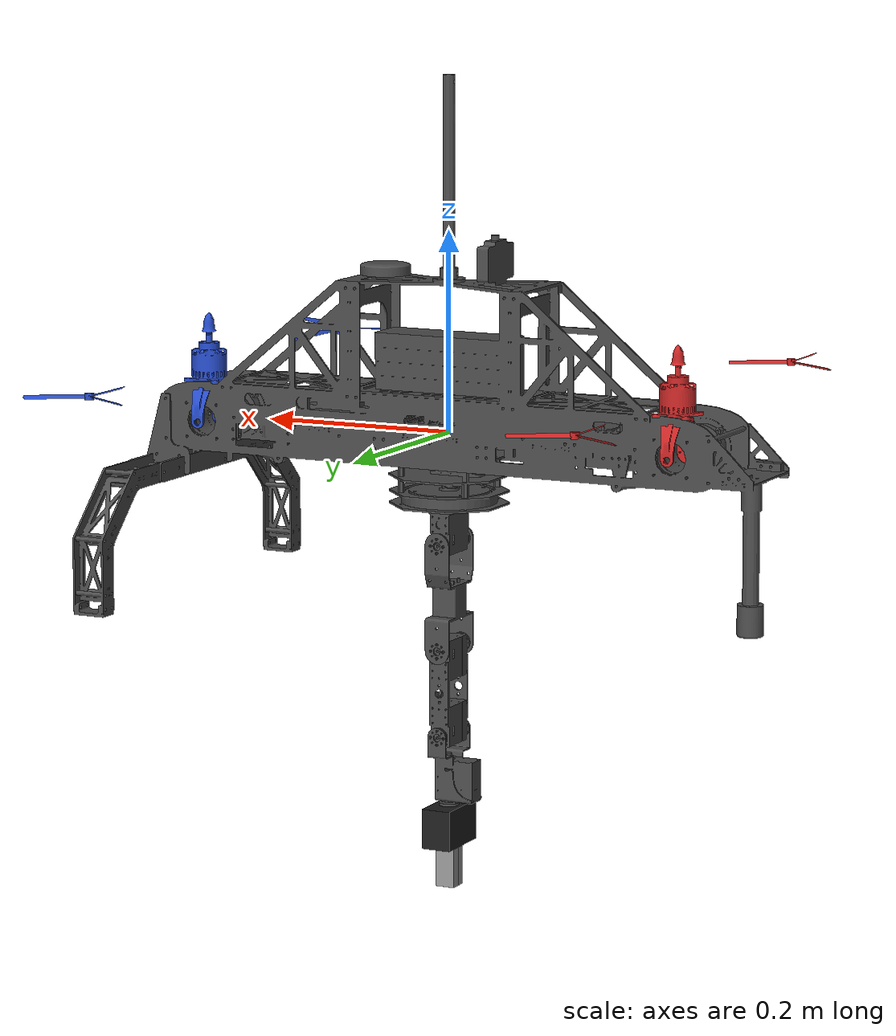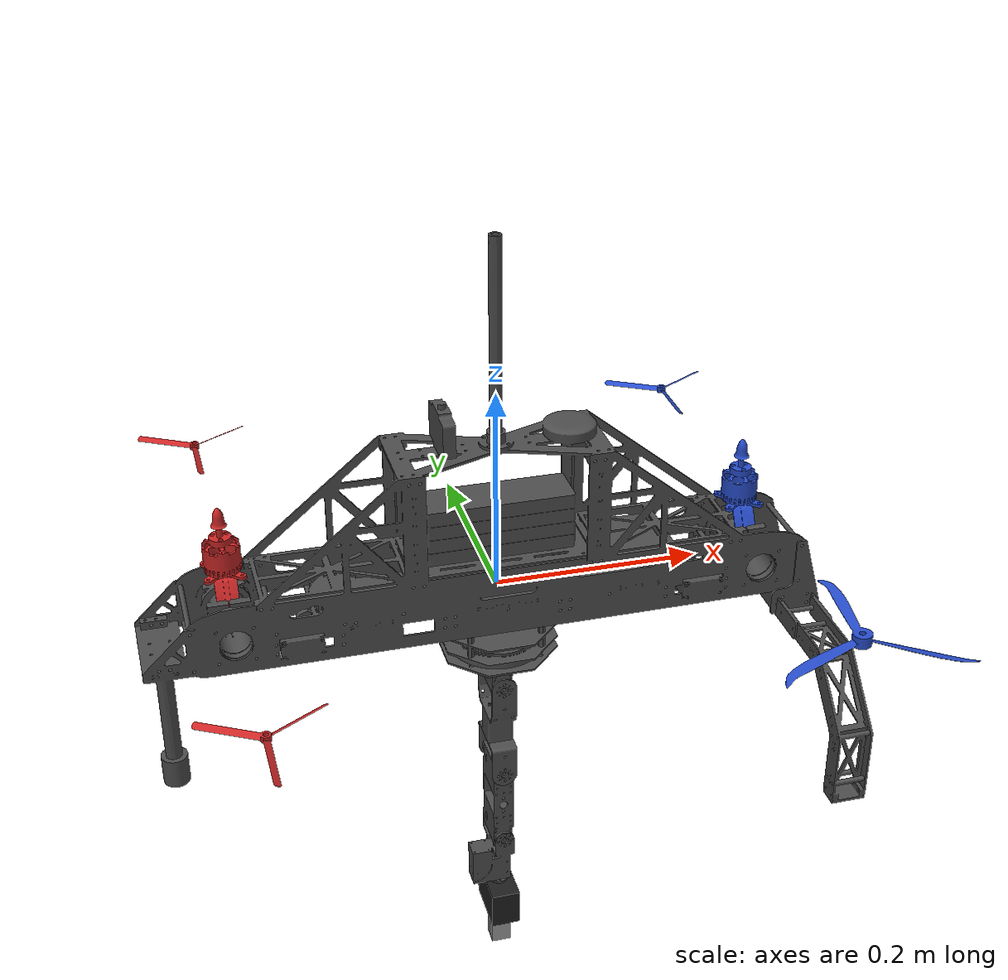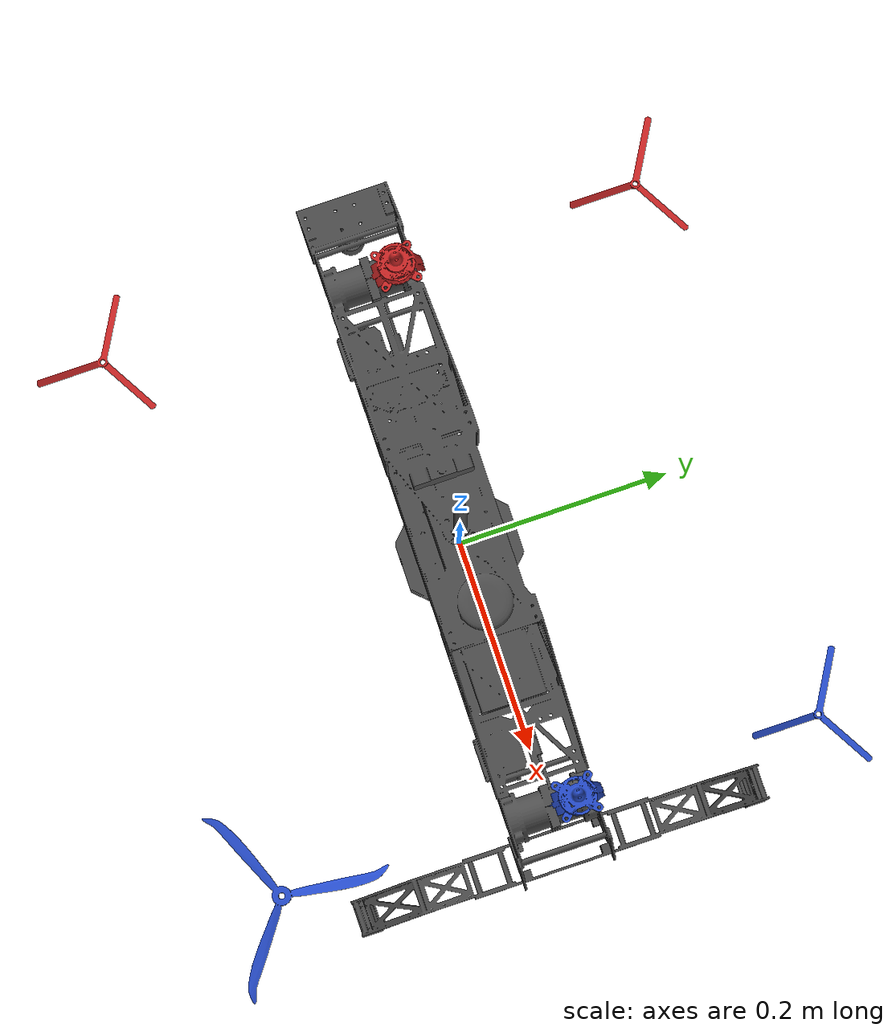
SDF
<sdf version='1.7'>
  <model name='quadtilt_new'>
    <link name='base_link'>
      <inertial>
        <pose>0.0 -0.000647 0.024368 0 -0 0</pose>
        <mass>2.3411</mass>
        <inertia>
          <ixx>0.0013622</ixx>
          <ixy>1.2109e-05</ixy>
          <ixz>2.1278e-05</ixz>
          <iyy>0.011253</iyy>
          <iyz>1.003e-06</iyz>
          <izz>0.011215</izz>
        </inertia>
      </inertial>

      <collision name='landing_gear_front_collision'>
      <pose>-0.3 0 -0.18 0 0 0</pose> <!-- ⚠️ 请替换为你前起落架脚尖的实际坐标 -->
      <geometry>
        <sphere><radius>0.03</radius></sphere>
      </geometry>
      <surface>
        <contact>
          <ode>
            <!-- [关键1] 降低刚度 kp。原本1e6太硬像钢铁，现在1e5(十万)像硬橡胶 -->
            <kp>1000000</kp>
            <!-- [关键2] 极大提高阻尼 kd。以前是100，现在2000。吸收一切高频震动动能 -->
            <kd>10</kd>
            <!-- [关键3] 给一个极小但非0的允许修正速度，防止挤压应力把 EKF 炸掉 -->
            <max_vel>0.2</max_vel>
            <!-- [关键4] 允许 5 毫米的弹性形变陷落深度，作为物理缓冲层 -->
            <min_depth>0.001</min_depth>
          </ode>
        </contact>
        <friction><ode><mu>1.0</mu><mu2>1.0</mu2></ode></friction>
      </surface>
    </collision>

    <!-- 左起落架脚垫 -->
    <collision name='landing_gear_left_collision'>
      <pose>0.3 0.2 -0.18 0 0 0</pose> <!-- ⚠️ 请替换为实际坐标 -->
      <geometry>
        <sphere><radius>0.03</radius></sphere>
      </geometry>
      <surface>
        <contact>
          <ode>
            <!-- [关键1] 降低刚度 kp。原本1e6太硬像钢铁，现在1e5(十万)像硬橡胶 -->
            <kp>1000000</kp>
            <!-- [关键2] 极大提高阻尼 kd。以前是100，现在2000。吸收一切高频震动动能 -->
            <kd>10</kd>
            <!-- [关键3] 给一个极小但非0的允许修正速度，防止挤压应力把 EKF 炸掉 -->
            <max_vel>0.2</max_vel>
            <!-- [关键4] 允许 5 毫米的弹性形变陷落深度，作为物理缓冲层 -->
            <min_depth>0.001</min_depth>
          </ode>
        </contact>
        <friction><ode><mu>1.0</mu><mu2>1.0</mu2></ode></friction>
      </surface>
    </collision>

    <!-- 右起落架脚垫 -->
    <collision name='landing_gear_right_collision'>
      <pose>0.3 -0.2 -0.18 0 0 0</pose> <!-- ⚠️ 请替换为实际坐标 -->
      <geometry>
        <sphere><radius>0.03</radius></sphere>
      </geometry>
      <surface>
        <contact>
          <ode>
            <!-- [关键1] 降低刚度 kp。原本1e6太硬像钢铁，现在1e5(十万)像硬橡胶 -->
            <kp>1000000</kp>
            <!-- [关键2] 极大提高阻尼 kd。以前是100，现在2000。吸收一切高频震动动能 -->
            <kd>10</kd>
            <!-- [关键3] 给一个极小但非0的允许修正速度，防止挤压应力把 EKF 炸掉 -->
            <max_vel>0.2</max_vel>
            <!-- [关键4] 允许 5 毫米的弹性形变陷落深度，作为物理缓冲层 -->
            <min_depth>0.001</min_depth>
          </ode>
        </contact>
        <friction><ode><mu>1.0</mu><mu2>1.0</mu2></ode></friction>
      </surface>
    </collision>

      <visual name='base_link_visual'>
        <pose>0 0 0 0 -0 0</pose>
        <geometry>
          <mesh>
            <scale>1 1 1</scale>
            <uri>model://quadtilt_new/meshes/base_link.STL</uri>
          </mesh>
        </geometry>
        <material>
          <script>
            <name>Gazebo/DarkGrey</name>
            <uri>file://media/materials/scripts/gazebo.material</uri>
          </script>
        </material>
      </visual>
    </link>

    <!-- IMU Link -->
    <link name='imu_link'>
      <pose>0 0 0 0 0 0</pose>
      <inertial>
        <pose>0 0 0 0 0 0</pose>
        <mass>0.015</mass>
        <inertia>
          <ixx>0.00001</ixx><ixy>0</ixy><ixz>0</ixz>
          <iyy>0.00002</iyy><iyz>0</iyz><izz>0.00002</izz>
        </inertia>
      </inertial>
      <sensor name="imu_sensor" type="imu">
        <pose>0 0 0 3.141593 0 0</pose>
        <always_on>1</always_on>
        <update_rate>1000.0</update_rate>
      </sensor>
    </link>
    <joint name='imu_joint' type='fixed'>
      <child>imu_link</child>
      <parent>base_link</parent>
    </joint>

    <joint name='tilt_0_joint' type='revolute'>
      <pose relative_to='base_link'>0.255 0 0 -1.5708 -1.5708 -3.14159</pose>
      <parent>base_link</parent>
      <child>tilt_0_Link</child>
      <axis>
        <xyz>0 0 1</xyz>
        <limit>
          <lower>-1.57</lower>
          <upper>1.57</upper>
          <effort>10</effort>
          <velocity>2</velocity>
        </limit>
        <dynamics>
          <spring_reference>0</spring_reference>
          <spring_stiffness>0</spring_stiffness>
        </dynamics>
      </axis>
    </joint>
    <link name='tilt_0_Link'>
      <pose relative_to='tilt_0_joint'>0 0 0 0 -0 0</pose>
      <inertial>
        <pose>0.028311 -0 -0 0 -0 0</pose>
        <mass>0.94736</mass>
        <inertia>
          <ixx>0.0033591</ixx>
          <ixy>-3.2015e-12</ixy>
          <ixz>5.825e-11</ixz>
          <iyy>0.0032937</iyy>
          <iyz>6.3798e-10</iyz>
          <izz>0.0001883</izz>
        </inertia>
      </inertial>
      <collision name='tilt_0_Link_collision'>
        <pose>0 0 0 0 -0 0</pose>
        <geometry>
          <mesh>
            <scale>1 1 1</scale>
            <uri>model://quadtilt_new/meshes/tilt_0_Link.STL</uri>
          </mesh>
        </geometry>
      </collision>
      <visual name='tilt_0_Link_visual'>
        <pose>0 0 0 0 -0 0</pose>
        <geometry>
          <mesh>
            <scale>1 1 1</scale>
            <uri>model://quadtilt_new/meshes/tilt_0_Link.STL</uri>
          </mesh>
        </geometry>
        <material><script><name>Gazebo/Blue</name></script></material>
      </visual>
    </link>
    <joint name='properller_0_joint' type='revolute'>
      <pose relative_to='tilt_0_Link'>0.05075 0 0.255 -1.5708 -0 -1.5708</pose>
      <parent>tilt_0_Link</parent>
      <child>properller_0_Link</child>
      <axis>
        <xyz>0 0 1</xyz>
        <limit>
          <lower>-1e+16</lower>
          <upper>1e+16</upper>
        </limit>
        <dynamics>
          <damping>0.002</damping>
          <friction>0.005</friction>
          <spring_reference>0</spring_reference>
          <spring_stiffness>0</spring_stiffness>
        </dynamics>
      </axis>
    </joint>
    <link name='properller_0_Link'>
      <pose relative_to='properller_0_joint'>0 0 0 0 -0 0</pose>
      <inertial>
        <pose>0 0 0.005 0 -0 0</pose>
        <mass>0.025</mass>
        <inertia>
          <ixx>0.00005</ixx>
          <ixy>0</ixy>
          <ixz>0</ixz>
          <iyy>0.00005</iyy>
          <iyz>0</iyz>
          <izz>0.0003</izz>  <!-- 匹配 15 寸桨的转动惯量 -->
        </inertia>
      </inertial>
      <visual name='properller_0_Link_visual'>
        <pose>0 0 0 0 -0 0</pose>
        <geometry>
          <mesh>
            <scale>1 1 1</scale>
            <uri>model://quadtilt_new/meshes/properller_0_Link.STL</uri>
          </mesh>
        </geometry>
        <material><script><name>Gazebo/Blue</name></script></material>
      </visual>
    </link>
    <joint name='properller_2_joint' type='revolute'>
      <pose relative_to='tilt_0_Link'>0.05075 0 -0.255 -1.5708 -0 -1.5708</pose>
      <parent>tilt_0_Link</parent>
      <child>properller_2_Link</child>
      <axis>
        <xyz>0 0 1</xyz>
        <limit>
          <lower>-1e+16</lower>
          <upper>1e+16</upper>
        </limit>
        <dynamics>
          <damping>0.002</damping>
          <friction>0.005</friction>
          <spring_reference>0</spring_reference>
          <spring_stiffness>0</spring_stiffness>
        </dynamics>
      </axis>
    </joint>
    <link name='properller_2_Link'>
      <pose relative_to='properller_2_joint'>0 0 0 0 -0 0</pose>
      <inertial>
        <pose>-0 -0 0.005 0 -0 0</pose>
        <mass>0.025</mass>
        <inertia>
          <ixx>0.00005</ixx>
          <ixy>0</ixy>
          <ixz>0</ixz>
          <iyy>0.00005</iyy>
          <iyz>0</iyz>
          <izz>0.0003</izz>  <!-- 匹配 15 寸桨的转动惯量 -->
        </inertia>
      </inertial>
      <visual name='properller_2_Link_visual'>
        <pose>0 0 0 0 -0 0</pose>
        <geometry>
          <mesh>
            <scale>1 1 1</scale>
            <uri>model://quadtilt_new/meshes/properller_2_Link.STL</uri>
          </mesh>
        </geometry>
        <material><script><name>Gazebo/Blue</name></script></material>
      </visual>
    </link>
    <joint name='tilt_1_joint' type='revolute'>
      <pose relative_to='base_link'>-0.255 0 0 -1.5708 -1.5708 -3.14159</pose>
      <parent>base_link</parent>
      <child>tilt_1_Link</child>
      <axis>
        <xyz>0 0 1</xyz>
        <limit>
          <lower>-1.57</lower>
          <upper>1.57</upper>
          <effort>10</effort>
          <velocity>2</velocity>
        </limit>
        <dynamics>
          <spring_reference>0</spring_reference>
          <spring_stiffness>0</spring_stiffness>
        </dynamics>
      </axis>
    </joint>
    <link name='tilt_1_Link'>
      <pose relative_to='tilt_1_joint'>0 0 0 0 -0 0</pose>
      <inertial>
        <pose>0.028311 -0 -0 0 -0 0</pose>
        <mass>0.94736</mass>
        <inertia>
          <ixx>0.0033591</ixx>
          <ixy>-3.2015e-12</ixy>
          <ixz>5.825e-11</ixz>
          <iyy>0.0032937</iyy>
          <iyz>6.3798e-10</iyz>
          <izz>0.0001883</izz>
        </inertia>
      </inertial>
      <collision name='tilt_1_Link_collision'>
        <pose>0 0 0 0 -0 0</pose>
        <geometry>
          <mesh>
            <scale>1 1 1</scale>
            <uri>model://quadtilt_new/meshes/tilt_1_Link.STL</uri>
          </mesh>
        </geometry>
      </collision>
      <visual name='tilt_1_Link_visual'>
        <pose>0 0 0 0 -0 0</pose>
        <geometry>
          <mesh>
            <scale>1 1 1</scale>
            <uri>model://quadtilt_new/meshes/tilt_1_Link.STL</uri>
          </mesh>
        </geometry>
        <material><script><name>Gazebo/Red</name></script></material>
      </visual>
    </link>
    <joint name='properller_1_joint' type='revolute'>
      <pose relative_to='tilt_1_Link'>0.05075 0 -0.255 -1.5708 -0 -1.5708</pose>
      <parent>tilt_1_Link</parent>
      <child>properller_1_Link</child>
      <axis>
        <xyz>0 0 1</xyz>
        <limit>
          <lower>-1e+16</lower>
          <upper>1e+16</upper>
        </limit>
        <dynamics>
          <damping>0.002</damping>
          <friction>0.005</friction>
          <spring_reference>0</spring_reference>
          <spring_stiffness>0</spring_stiffness>
        </dynamics>
      </axis>
    </joint>
    <link name='properller_1_Link'>
      <pose relative_to='properller_1_joint'>0 0 0 0 -0 0</pose>
      <inertial>
        <pose>-0 -0 0.005 0 -0 0</pose>
        <mass>0.025</mass>
        <inertia>
          <ixx>0.00005</ixx>
          <ixy>0</ixy>
          <ixz>0</ixz>
          <iyy>0.00005</iyy>
          <iyz>0</iyz>
          <izz>0.0003</izz>  <!-- 匹配 15 寸桨的转动惯量 -->
        </inertia>
      </inertial>
      <visual name='properller_1_Link_visual'>
        <pose>0 0 0 0 -0 0</pose>
        <geometry>
          <mesh>
            <scale>1 1 1</scale>
            <uri>model://quadtilt_new/meshes/properller_1_Link.STL</uri>
          </mesh>
        </geometry>
        <material><script><name>Gazebo/Red</name></script></material>
      </visual>
    </link>
    <joint name='properller_3_joint' type='revolute'>
      <pose relative_to='tilt_1_Link'>0.05075 0 0.255 -1.5708 -0 -1.5708</pose>
      <parent>tilt_1_Link</parent>
      <child>properller_3_Link</child>
      <axis>
        <xyz>0 0 1</xyz>
        <limit>
          <lower>-1e+16</lower>
          <upper>1e+16</upper>
        </limit>
        <dynamics>
          <spring_reference>0</spring_reference>
          <spring_stiffness>0</spring_stiffness>
        </dynamics>
      </axis>
    </joint>
    <link name='properller_3_Link'>
      <pose relative_to='properller_3_joint'>0 0 0 0 -0 0</pose>
      <inertial>
        <pose>0 0 0.005 0 -0 0</pose>
        <mass>0.025</mass>
        <inertia>
          <ixx>0.00005</ixx>
          <ixy>0</ixy>
          <ixz>0</ixz>
          <iyy>0.00005</iyy>
          <iyz>0</iyz>
          <izz>0.0003</izz>  <!-- 匹配 15 寸桨的转动惯量 -->
        </inertia>
      </inertial>
      <visual name='properller_3_Link_visual'>
        <pose>0 0 0 0 -0 0</pose>
        <geometry>
          <mesh>
            <scale>1 1 1</scale>
            <uri>model://quadtilt_new/meshes/properller_3_Link.STL</uri>
          </mesh>
        </geometry>
        <material><script><name>Gazebo/Red</name></script></material>
      </visual>
    </link>

    <!-- 插件区域 (气动 + 飞控)                                      -->

    <!-- Aero Prop 0 (CCW) -->
    <plugin name="rotor_0_blade_1" filename="libLiftDragPlugin.so"><a0>0.3</a0><alpha_stall>1.4</alpha_stall><cla>4.25</cla><cda>0.10</cda><cma>0.0</cma><cla_stall>-0.025</cla_stall><cda_stall>0.0</cda_stall><cma_stall>0.0</cma_stall><area>0.0045</area><air_density>1.2041</air_density><cp>0.13 0 0</cp><forward>0 1 0</forward><upward>0 0 1</upward><link_name>properller_0_Link</link_name></plugin>
    <plugin name="rotor_0_blade_2" filename="libLiftDragPlugin.so"><a0>0.3</a0><alpha_stall>1.4</alpha_stall><cla>4.25</cla><cda>0.10</cda><cma>0.0</cma><cla_stall>-0.025</cla_stall><cda_stall>0.0</cda_stall><cma_stall>0.0</cma_stall><area>0.0045</area><air_density>1.2041</air_density><cp>-0.13 0 0</cp><forward>0 -1 0</forward><upward>0 0 1</upward><link_name>properller_0_Link</link_name></plugin>

    <!-- Aero Prop 1 (CCW) -->
    <plugin name="rotor_1_blade_1" filename="libLiftDragPlugin.so"><a0>0.3</a0><alpha_stall>1.4</alpha_stall><cla>4.25</cla><cda>0.10</cda><cma>0.0</cma><cla_stall>-0.025</cla_stall><cda_stall>0.0</cda_stall><cma_stall>0.0</cma_stall><area>0.0045</area><air_density>1.2041</air_density><cp>0.13 0 0</cp><forward>0 1 0</forward><upward>0 0 1</upward><link_name>properller_1_Link</link_name></plugin>
    <plugin name="rotor_1_blade_2" filename="libLiftDragPlugin.so"><a0>0.3</a0><alpha_stall>1.4</alpha_stall><cla>4.25</cla><cda>0.10</cda><cma>0.0</cma><cla_stall>-0.025</cla_stall><cda_stall>0.0</cda_stall><cma_stall>0.0</cma_stall><area>0.0045</area><air_density>1.2041</air_density><cp>-0.13 0 0</cp><forward>0 -1 0</forward><upward>0 0 1</upward><link_name>properller_1_Link</link_name></plugin>

    <!-- Aero Prop 2 (CW) -->
    <plugin name="rotor_2_blade_1" filename="libLiftDragPlugin.so"><a0>0.3</a0><alpha_stall>1.4</alpha_stall><cla>4.25</cla><cda>0.10</cda><cma>0.0</cma><cla_stall>-0.025</cla_stall><cda_stall>0.0</cda_stall><cma_stall>0.0</cma_stall><area>0.0045</area><air_density>1.2041</air_density><cp>0.13 0 0</cp><forward>0 -1 0</forward><upward>0 0 1</upward><link_name>properller_2_Link</link_name></plugin>
    <plugin name="rotor_2_blade_2" filename="libLiftDragPlugin.so"><a0>0.3</a0><alpha_stall>1.4</alpha_stall><cla>4.25</cla><cda>0.10</cda><cma>0.0</cma><cla_stall>-0.025</cla_stall><cda_stall>0.0</cda_stall><cma_stall>0.0</cma_stall><area>0.0045</area><air_density>1.2041</air_density><cp>-0.13 0 0</cp><forward>0 1 0</forward><upward>0 0 1</upward><link_name>properller_2_Link</link_name></plugin>

    <!-- Aero Prop 3 (CW) -->
    <plugin name="rotor_3_blade_1" filename="libLiftDragPlugin.so"><a0>0.3</a0><alpha_stall>1.4</alpha_stall><cla>4.25</cla><cda>0.10</cda><cma>0.0</cma><cla_stall>-0.025</cla_stall><cda_stall>0.0</cda_stall><cma_stall>0.0</cma_stall><area>0.0045</area><air_density>1.2041</air_density><cp>0.13 0 0</cp><forward>0 -1 0</forward><upward>0 0 1</upward><link_name>properller_3_Link</link_name></plugin>
    <plugin name="rotor_3_blade_2" filename="libLiftDragPlugin.so"><a0>0.3</a0><alpha_stall>1.4</alpha_stall><cla>4.25</cla><cda>0.10</cda><cma>0.0</cma><cla_stall>-0.025</cla_stall><cda_stall>0.0</cda_stall><cma_stall>0.0</cma_stall><area>0.0045</area><air_density>1.2041</air_density><cp>-0.13 0 0</cp><forward>0 1 0</forward><upward>0 0 1</upward><link_name>properller_3_Link</link_name></plugin>

    <!-- ArduPilot Control -->
    <plugin name="ardupilot_plugin" filename="libArduPilotPlugin.so">
      <fdm_addr>127.0.0.1</fdm_addr>
      <fdm_port_in>9002</fdm_port_in>
      <fdm_port_out>9003</fdm_port_out>
      <modelXYZToAirplaneXForwardZDown>0 0 0 3.141593 0 0</modelXYZToAirplaneXForwardZDown>
      <imuName>quadtilt_new::imu_link::imu_sensor</imuName>
      <connectionTimeoutMaxCount>5</connectionTimeoutMaxCount>

      <!-- Motors (0-3) -->
      <control channel="0"><type>VELOCITY</type><offset>0</offset><p_gain>0.20</p_gain><i_gain>0</i_gain><d_gain>0</d_gain><i_max>0</i_max><i_min>0</i_min><cmd_max>2.5</cmd_max><cmd_min>-2.5</cmd_min><jointName>properller_0_joint</jointName><multiplier>800</multiplier></control>
      <control channel="1"><type>VELOCITY</type><offset>0</offset><p_gain>0.20</p_gain><i_gain>0</i_gain><d_gain>0</d_gain><i_max>0</i_max><i_min>0</i_min><cmd_max>2.5</cmd_max><cmd_min>-2.5</cmd_min><jointName>properller_1_joint</jointName><multiplier>800</multiplier></control>
      <control channel="2"><type>VELOCITY</type><offset>0</offset><p_gain>0.20</p_gain><i_gain>0</i_gain><d_gain>0</d_gain><i_max>0</i_max><i_min>0</i_min><cmd_max>2.5</cmd_max><cmd_min>-2.5</cmd_min><jointName>properller_2_joint</jointName><multiplier>-800</multiplier></control>
      <control channel="3"><type>VELOCITY</type><offset>0</offset><p_gain>0.20</p_gain><i_gain>0</i_gain><d_gain>0</d_gain><i_max>0</i_max><i_min>0</i_min><cmd_max>2.5</cmd_max><cmd_min>-2.5</cmd_min><jointName>properller_3_joint</jointName><multiplier>-800</multiplier></control>

      <!-- Tilt Servos (4-7)  -->
      <!-- deg_out_red = multiplier*(input(pwm to 0-1)+offset) -->
      <control channel="4"><type>POSITION</type><offset>-0.85</offset><p_gain>40.0</p_gain><i_gain>0</i_gain><d_gain>0.5</d_gain><i_max>0</i_max><i_min>0</i_min><cmd_max>2.0</cmd_max><cmd_min>-2.0</cmd_min><jointName>tilt_0_joint</jointName><multiplier>1.495</multiplier></control>
      <control channel="5"><type>POSITION</type><offset>-0.85</offset><p_gain>40.0</p_gain><i_gain>0</i_gain><d_gain>0.5</d_gain><i_max>0</i_max><i_min>0</i_min><cmd_max>2.0</cmd_max><cmd_min>-2.0</cmd_min><jointName>tilt_1_joint</jointName><multiplier>1.495</multiplier></control>
      <control channel="6">
        <type>POSITION</type>
        <offset>-0.5</offset>
        <p_gain>20.0</p_gain>
        <i_gain>0</i_gain>
        <d_gain>0</d_gain>
        <i_max>0</i_max>
        <i_min>0</i_min>
        <cmd_max>2.0</cmd_max>
        <cmd_min>-2.0</cmd_min>
        <jointName>robotic_arm::joint_1</jointName>
        <multiplier>4.7124</multiplier>
      </control>
      <control channel="7">
        <type>POSITION</type>
        <offset>-0.5</offset>
        <p_gain>20.0</p_gain>
        <i_gain>0</i_gain>
        <d_gain>0.05</d_gain>
        <i_max>0</i_max>
        <i_min>0</i_min>
        <cmd_max>2.0</cmd_max>
        <cmd_min>-2.0</cmd_min>
        <jointName>robotic_arm::joint_2</jointName>
        <multiplier>4.7124</multiplier>
      </control>
      <control channel="8">
        <type>POSITION</type>
        <offset>-0.5</offset>
        <p_gain>20.0</p_gain>
        <i_gain>0</i_gain>
        <d_gain>0.05</d_gain>
        <i_max>0</i_max>
        <i_min>0</i_min>
        <cmd_max>2.0</cmd_max>
        <cmd_min>-2.0</cmd_min>
        <jointName>robotic_arm::joint_3</jointName>
        <multiplier>4.7124</multiplier>
      </control>
      <control channel="9">
        <type>POSITION</type>
        <offset>-0.5</offset>
        <p_gain>20.0</p_gain>
        <i_gain>0</i_gain>
        <d_gain>0.05</d_gain>
        <i_max>0</i_max>
        <i_min>0</i_min>
        <cmd_max>2.0</cmd_max>
        <cmd_min>-2.0</cmd_min>
        <jointName>robotic_arm::joint_4</jointName>
        <multiplier>4.7124</multiplier>
      </control>
      <control channel="10">
        <type>POSITION</type>
        <offset>-0.5</offset>
        <p_gain>10.0</p_gain>
        <i_gain>0</i_gain>
        <d_gain>0</d_gain>
        <i_max>0</i_max>
        <i_min>0</i_min>
        <cmd_max>2.0</cmd_max>
        <cmd_min>-2.0</cmd_min>
        <jointName>robotic_arm::joint_5</jointName>
        <multiplier>4.7124</multiplier>
      </control>

<!-- Gripper Left Finger (Channel 11) -->
      <control channel="11">
        <type>POSITION</type>
        <offset>0</offset>
        <!-- 【关键修改】 P值降到极低，只要能缓慢合上就行 -->
        <p_gain>0.5</p_gain>
        <i_gain>0</i_gain>
        <!-- 【关键修改】 D值降到微小，防止导数项放大高频噪声 -->
        <d_gain>0.01</d_gain>
        <i_max>0</i_max>
        <i_min>0</i_min>
        <!-- 【关键修改】 限制最大输出力矩为 1N，5g的物体1N足够推得飞快了 -->
        <cmd_max>1.0</cmd_max>
        <cmd_min>-1.0</cmd_min>
        <jointName>robotic_arm::left_finger_joint</jointName>
        <multiplier>0.025</multiplier>
      </control>

      <!-- Gripper Right Finger (Channel 11) -->
      <control channel="11">
        <type>POSITION</type>
        <offset>0</offset>
        <p_gain>0.5</p_gain>
        <i_gain>0</i_gain>
        <d_gain>0.01</d_gain>
        <i_max>0</i_max>
        <i_min>0</i_min>
        <cmd_max>1.0</cmd_max>
        <cmd_min>-1.0</cmd_min>
        <jointName>robotic_arm::right_finger_joint</jointName>
        <multiplier>0.025</multiplier>
      </control>

    </plugin>

    <include>
      <uri>model://robotic_arm</uri>
      <name>robotic_arm</name>
      <pose>0 0 -0.04 3.1416 0 0</pose> <!-- 挂在飞机重心下方 -->
    </include>

    <joint name="arm_weld" type="fixed">
      <parent>base_link</parent> <!-- 飞机的底座名字 -->
      <child>robotic_arm::base_link</child>
    </joint>

  </model>
</sdf>

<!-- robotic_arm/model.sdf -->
<sdf version='1.7'>
  <model name='robotic_arm'>
    <link name='base_link'>
      <inertial>
        <pose>-0.000805 -3.1e-05 0.015733 0 -0 0</pose>
        <mass>0.34432</mass>
        <inertia>
          <ixx>0.00026968</ixx>
          <ixy>-2.6656e-10</ixy>
          <ixz>-8.0892e-08</ixz>
          <iyy>0.00027222</iyy>
          <iyz>-9.1152e-11</iyz>
          <izz>0.00052932</izz>
        </inertia>
      </inertial>
      <visual name='base_link_visual'>
        <pose>0 0 0 0 -0 0</pose>
        <geometry>
          <mesh>
            <scale>1 1 1</scale>
            <uri>model://robotic_arm/meshes/base_link.STL</uri>
          </mesh>
        </geometry>
        <material>
          <script>
            <name>Gazebo/DarkGrey</name>
            <uri>file://media/materials/scripts/gazebo.material</uri>
          </script>
        </material>
      </visual>
    </link>
    <joint name='joint_1' type='revolute'>
      <pose relative_to='base_link'>0 0 0.03 0 -0 0</pose>
      <parent>base_link</parent>
      <child>link_1</child>
      <axis>
        <xyz>0 0 -1</xyz>
        <limit>
          <lower>-2.36</lower>
          <upper>2.36</upper>
          <effort>10</effort>
          <velocity>1.5</velocity>
        </limit>
        <dynamics>
          <damping>0.05</damping>
          <friction>0.01</friction>
          <spring_reference>0</spring_reference>
          <spring_stiffness>0</spring_stiffness>
        </dynamics>
      </axis>
      <physics>
        <ode>
          <implicit_spring_damper>1</implicit_spring_damper>
          <cfm_damping>1</cfm_damping>
          <limit>
            <cfm>0</cfm>
            <erp>0.2</erp>
          </limit>
        </ode>
      </physics>
    </joint>
    <link name='link_1'>
      <pose relative_to='joint_1'>0 0 0 0 -0 0</pose>
      <inertial>
        <pose>-2.1e-05 0.000147 0.016563 0 -0 0</pose>
        <mass>0.057604</mass>
        <inertia>
          <ixx>1.8263e-05</ixx>
          <ixy>-3.807e-10</ixy>
          <ixz>-1.4763e-10</ixz>
          <iyy>1.3985e-05</iyy>
          <iyz>-2.922e-08</iyz>
          <izz>2.307e-05</izz>
        </inertia>
      </inertial>
      <visual name='link_1_visual'>
        <pose>0 0 0 0 -0 0</pose>
        <geometry>
          <mesh>
            <scale>1 1 1</scale>
            <uri>model://robotic_arm/meshes/link_1.STL</uri>
          </mesh>
        </geometry>
        <material>
          <script>
            <name>Gazebo/DarkGrey</name>
            <uri>file://media/materials/scripts/gazebo.material</uri>
          </script>
        </material>
      </visual>
    </link>
    <joint name='joint_2' type='revolute'>
      <pose relative_to='link_1'>0.000113 0 0.038401 -1.57079 -1.57079 -3.14159</pose>
      <parent>link_1</parent>
      <child>link_2</child>
      <axis>
        <xyz>0 0 1</xyz>
        <limit>
          <lower>-2.36</lower>
          <upper>2.36</upper>
          <effort>10</effort>
          <velocity>1.5</velocity>
        </limit>
        <dynamics>
          <damping>0.05</damping>
          <friction>0.01</friction>
          <spring_reference>0</spring_reference>
          <spring_stiffness>0</spring_stiffness>
        </dynamics>
      </axis>
      <physics>
        <ode>
          <implicit_spring_damper>1</implicit_spring_damper>
          <cfm_damping>1</cfm_damping>
          <limit>
            <cfm>0</cfm>
            <erp>0.2</erp>
          </limit>
        </ode>
      </physics>
    </joint>
    <link name='link_2'>
      <pose relative_to='joint_2'>0 0 0 0 -0 0</pose>
      <inertial>
        <pose>0.056726 -0 -0.000271 0 -0 0</pose>
        <mass>0.039095</mass>
        <inertia>
          <ixx>1.0114e-05</ixx>
          <ixy>7.2762e-21</ixy>
          <ixz>2.0973e-19</ixz>
          <iyy>1.4176e-05</iyy>
          <iyz>3.677e-21</iyz>
          <izz>7.7479e-06</izz>
        </inertia>
      </inertial>
      <visual name='link_2_visual'>
        <pose>0 0 0 0 -0 0</pose>
        <geometry>
          <mesh>
            <scale>1 1 1</scale>
            <uri>model://robotic_arm/meshes/link_2.STL</uri>
          </mesh>
        </geometry>
        <material>
          <script>
            <name>Gazebo/DarkGrey</name>
            <uri>file://media/materials/scripts/gazebo.material</uri>
          </script>
        </material>
      </visual>
    </link>
    <joint name='joint_3' type='revolute'>
      <pose relative_to='link_2'>0.10507 0 0 0 -0 0</pose>
      <parent>link_2</parent>
      <child>link_3</child>
      <axis>
        <xyz>0 0 1</xyz>
        <limit>
          <lower>-2.36</lower>
          <upper>2.36</upper>
          <effort>10</effort>
          <velocity>1.5</velocity>
        </limit>
        <dynamics>
          <damping>0.05</damping>
          <friction>0.01</friction>
          <spring_reference>0</spring_reference>
          <spring_stiffness>0</spring_stiffness>
        </dynamics>
      </axis>
      <physics>
        <ode>
          <implicit_spring_damper>1</implicit_spring_damper>
          <cfm_damping>1</cfm_damping>
          <limit>
            <cfm>0</cfm>
            <erp>0.2</erp>
          </limit>
        </ode>
      </physics>
    </joint>
    <link name='link_3'>
      <pose relative_to='joint_3'>0 0 0 0 -0 0</pose>
      <inertial>
        <pose>0.043581 -0.000872 -0.000243 0 -0 0</pose>
        <mass>0.075843</mass>
        <inertia>
          <ixx>1.4302e-05</ixx>
          <ixy>2.9527e-10</ixy>
          <ixz>-1.407e-12</ixz>
          <iyy>2.3711e-05</iyy>
          <iyz>-4.2397e-20</iyz>
          <izz>1.4547e-05</izz>
        </inertia>
      </inertial>
      <visual name='link_3_visual'>
        <pose>0 0 0 0 -0 0</pose>
        <geometry>
          <mesh>
            <scale>1 1 1</scale>
            <uri>model://robotic_arm/meshes/link_3.STL</uri>
          </mesh>
        </geometry>
        <material>
          <script>
            <name>Gazebo/DarkGrey</name>
            <uri>file://media/materials/scripts/gazebo.material</uri>
          </script>
        </material>
      </visual>
    </link>
    <joint name='joint_4' type='revolute'>
      <pose relative_to='link_3'>0.087162 -0.000311 -0.000271 0 -0 0</pose>
      <parent>link_3</parent>
      <child>link_4</child>
      <axis>
        <xyz>0 0 1</xyz>
        <limit>
          <lower>-2.36</lower>
          <upper>2.36</upper>
          <effort>10</effort>
          <velocity>1.5</velocity>
        </limit>
        <dynamics>
          <damping>0.05</damping>
          <friction>0.01</friction>
          <spring_reference>0</spring_reference>
          <spring_stiffness>0</spring_stiffness>
        </dynamics>
      </axis>
      <physics>
        <ode>
          <implicit_spring_damper>1</implicit_spring_damper>
          <cfm_damping>1</cfm_damping>
          <limit>
            <cfm>0</cfm>
            <erp>0.2</erp>
          </limit>
        </ode>
      </physics>
    </joint>
    <link name='link_4'>
      <pose relative_to='joint_4'>0 0 0 0 -0 0</pose>
      <inertial>
        <pose>0.044666 0.009062 0.000129 0 -0 0</pose>
        <mass>0.038113</mass>
        <inertia>
          <ixx>7.4825e-06</ixx>
          <ixy>-5.112e-07</ixy>
          <ixz>3.807e-10</ixz>
          <iyy>1.0505e-05</iyy>
          <iyz>-1.4763e-10</iyz>
          <izz>1.2542e-05</izz>
        </inertia>
      </inertial>
      <visual name='link_4_visual'>
        <pose>0 0 0 0 -0 0</pose>
        <geometry>
          <mesh>
            <scale>1 1 1</scale>
            <uri>model://robotic_arm/meshes/link_4.STL</uri>
          </mesh>
        </geometry>
        <material>
          <script>
            <name>Gazebo/DarkGrey</name>
            <uri>file://media/materials/scripts/gazebo.material</uri>
          </script>
        </material>
      </visual>
    </link>
    <joint name='joint_5' type='revolute'>
      <pose relative_to='link_4'>0.073 0 0 -1.5708 -0 -1.5708</pose>
      <parent>link_4</parent>
      <child>link_5</child>
      <axis>
        <xyz>0 0 -1</xyz>
        <limit>
          <lower>-2.36</lower>
          <upper>2.36</upper>
          <effort>10</effort>
          <velocity>1.5</velocity>
        </limit>
        <dynamics>
          <damping>0.05</damping>
          <friction>0.01</friction>
          <spring_reference>0</spring_reference>
          <spring_stiffness>0</spring_stiffness>
        </dynamics>
      </axis>
      <physics>
        <ode>
          <implicit_spring_damper>1</implicit_spring_damper>
          <cfm_damping>1</cfm_damping>
          <limit>
            <cfm>0</cfm>
            <erp>0.2</erp>
          </limit>
        </ode>
      </physics>
    </joint>

<!-- ================= 合并了夹爪基座的 link_5 ================= -->
    <link name='link_5'>
      <pose relative_to='joint_5'>0 0 0 0 -0 0</pose>
      <inertial>
        <!-- 稍微上移重心，合并了基座的10g和原来link5的10g -->
        <pose>0 0 0.01 0 -0 0</pose>
        <mass>0.02</mass>
        <!-- 【核心修复】将极度微小的 1.9e-08 提升到安全的 1e-05，彻底解决抽风和撕裂 -->
        <inertia>
          <ixx>1e-05</ixx><ixy>0</ixy><ixz>0</ixz>
          <iyy>1e-05</iyy><iyz>0</iyz><izz>1e-05</izz>
        </inertia>
      </inertial>

      <!-- 1. 原来 link_5 的微小网格视觉 -->
      <visual name='link_5_visual'>
        <pose>0 0 0 0 -0 0</pose>
        <geometry>
          <mesh>
            <scale>1 1 1</scale>
            <uri>model://robotic_arm/meshes/link_5.STL</uri>
          </mesh>
        </geometry>
        <material>
          <script>
            <name>Gazebo/DarkGrey</name>
            <uri>file://media/materials/scripts/gazebo.material</uri>
          </script>
        </material>
      </visual>

      <!-- 2. 追加：夹爪基座的视觉，直接作为 link_5 的一部分 -->
      <!-- Z=0.02 是 40mm 高度基座的中心 -->
      <visual name='gripper_base_visual'>
        <pose>0 0 0.02 0 0 0</pose>
        <geometry><box><size>0.03 0.06 0.04</size></box></geometry>
        <material>
          <script>
            <name>Gazebo/Black</name>
            <uri>file://media/materials/scripts/gazebo.material</uri>
          </script>
        </material>
      </visual>
      <!-- (基座碰撞暂不添加，保持你说的删除碰撞防抽风状态) -->
    </link>

    <!-- ================= 左侧手指 (直接连在 link_5 上) ================= -->
    <joint name='left_finger_joint' type='prismatic'>
      <!-- 关节直接挂在 link_5 的 Z=0.04(基座顶部) 位置 -->
      <pose relative_to='link_5'>0 0.005 0.04 0 0 0</pose>
      <parent>link_5</parent>
      <child>left_finger</child>
      <axis>
        <xyz>0 1 0</xyz>
        <limit>
          <lower>0</lower>
          <upper>0.03</upper>
          <effort>1.0</effort> <!-- 仅需极小力矩驱动 -->
          <velocity>0.2</velocity>
        </limit>
        <dynamics><damping>0.1</damping><friction>0.05</friction></dynamics>
      </axis>
      <physics>
        <ode>
          <implicit_spring_damper>1</implicit_spring_damper>
          <cfm_damping>1</cfm_damping>
        </ode>
      </physics>
    </joint>

    <link name='left_finger'>
      <!-- 手指长 42mm，从关节再向上延伸 21mm 为中心 -->
      <pose relative_to='left_finger_joint'>0 0 0.021 0 0 0</pose>
      <inertial>
        <mass>0.005</mass>
        <inertia>
          <ixx>1e-05</ixx><ixy>0</ixy><ixz>0</ixz>
          <iyy>1e-05</iyy><iyz>0</iyz><izz>1e-05</izz>
        </inertia>
      </inertial>
      <visual name='left_finger_visual'>
        <geometry><box><size>0.02 0.01 0.042</size></box></geometry>
        <material>
          <script>
            <name>Gazebo/Grey</name>
            <uri>file://media/materials/scripts/gazebo.material</uri>
          </script>
        </material>
      </visual>
    </link>

    <!-- ================= 右侧手指 (直接连在 link_5 上) ================= -->
    <joint name='right_finger_joint' type='prismatic'>
      <pose relative_to='link_5'>0 -0.005 0.04 0 0 0</pose>
      <parent>link_5</parent>
      <child>right_finger</child>
      <axis>
        <xyz>0 -1 0</xyz>
        <limit>
          <lower>0</lower>
          <upper>0.03</upper>
          <effort>1.0</effort>
          <velocity>0.2</velocity>
        </limit>
        <dynamics><damping>0.1</damping><friction>0.05</friction></dynamics>
      </axis>
      <physics>
        <ode>
          <implicit_spring_damper>1</implicit_spring_damper>
          <cfm_damping>1</cfm_damping>
        </ode>
      </physics>
    </joint>

    <link name='right_finger'>
      <pose relative_to='right_finger_joint'>0 0 0.021 0 0 0</pose>
      <inertial>
        <mass>0.005</mass>
        <inertia>
          <ixx>1e-05</ixx><ixy>0</ixy><ixz>0</ixz>
          <iyy>1e-05</iyy><iyz>0</iyz><izz>1e-05</izz>
        </inertia>
      </inertial>
      <visual name='right_finger_visual'>
        <geometry><box><size>0.02 0.01 0.042</size></box></geometry>
        <material>
          <script>
            <name>Gazebo/Grey</name>
            <uri>file://media/materials/scripts/gazebo.material</uri>
          </script>
        </material>
      </visual>
    </link>

    <frame name='flange_to_tool0' attached_to='link_5'>
      <pose>0 0 0 0 -0 0</pose>
    </frame>
    <frame name='tool0' attached_to='flange_to_tool0'/>
  </model>
</sdf>
